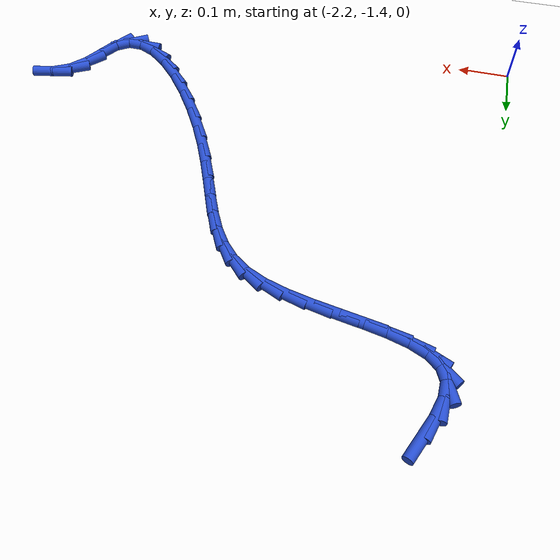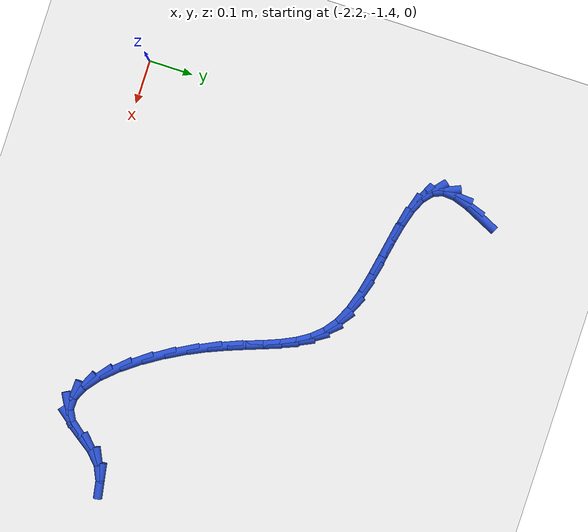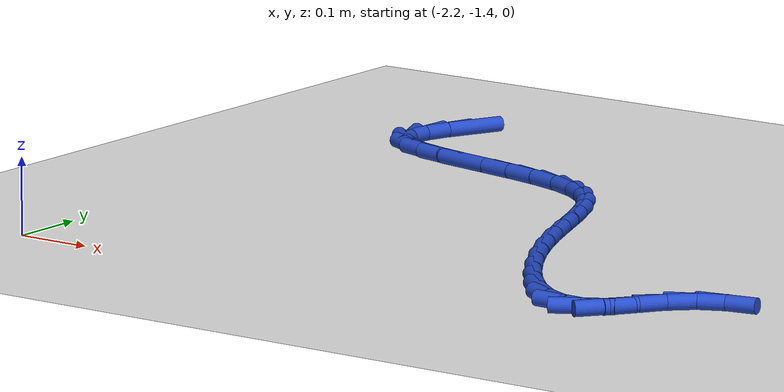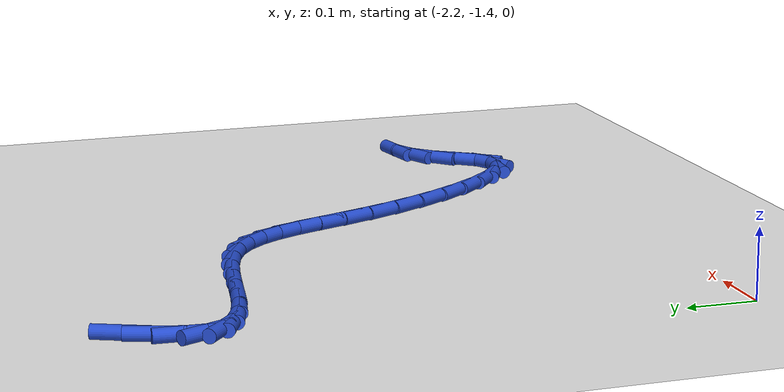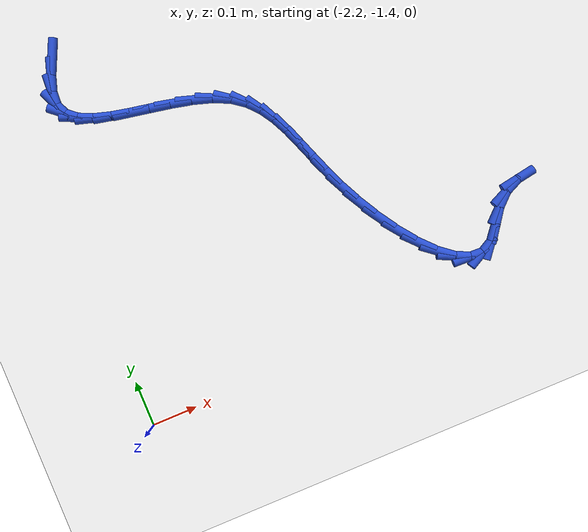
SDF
<sdf version="1.6">
 <world name="default">
  <model name="ground_plane">
   <static>1</static>
   <link name="link">
    <collision name="collision">
     <geometry><plane><normal>0 0 1</normal><size>100 100</size></plane></geometry>
     <surface><friction><ode><mu>100</mu><mu2>50</mu2></ode></friction></surface>
    </collision>
    <visual name="visual">
     <cast_shadows>0</cast_shadows>
     <geometry><plane><normal>0 0 1</normal><size>100 100</size></plane></geometry>
     <material>
      <script><uri>file://media/materials/scripts/gazebo.material</uri><name>Gazebo/WhiteGlow</name></script>
     </material>
    </visual>
   </link>
  </model>
  <model name="line">
   <link name="link_123">
    <pose>-2.0936362761853835 -0.5857237511106551 0.01 0 1.57 1.1304827464915892</pose>
    <collision name="collision">
     <geometry><cylinder><radius>0.01</radius><length>0.08</length></cylinder></geometry>
    </collision>
    <visual name="visual">
     <material>
      <script><name>Gazebo/Blue</name><uri>file://media/materials/scripts/gazebo.material</uri></script>
     </material>
     <geometry><cylinder><radius>0.01</radius><length>0.08</length></cylinder></geometry>
    </visual>
   </link>
   <link name="link_124">
    <pose>-2.1110963962269373 -0.6227811928537758 0.01 0 1.57 1.2505907035051138</pose>
    <collision name="collision">
     <geometry><cylinder><radius>0.01</radius><length>0.08</length></cylinder></geometry>
    </collision>
    <visual name="visual">
     <material>
      <script><name>Gazebo/Blue</name><uri>file://media/materials/scripts/gazebo.material</uri></script>
     </material>
     <geometry><cylinder><radius>0.01</radius><length>0.08</length></cylinder></geometry>
    </visual>
   </link>
   <link name="link_125">
    <pose>-2.1222989616577483 -0.6565627670909907 0.01 0 1.57 1.5094765787539208</pose>
    <collision name="collision">
     <geometry><cylinder><radius>0.01</radius><length>0.08</length></cylinder></geometry>
    </collision>
    <visual name="visual">
     <material>
      <script><name>Gazebo/Blue</name><uri>file://media/materials/scripts/gazebo.material</uri></script>
     </material>
     <geometry><cylinder><radius>0.01</radius><length>0.08</length></cylinder></geometry>
    </visual>
   </link>
   <link name="link_126">
    <pose>-2.124087427035657 -0.6856924237369265 0.01 0 1.57 -1.1592667165353674</pose>
    <collision name="collision">
     <geometry><cylinder><radius>0.01</radius><length>0.08</length></cylinder></geometry>
    </collision>
    <visual name="visual">
     <material>
      <script><name>Gazebo/Blue</name><uri>file://media/materials/scripts/gazebo.material</uri></script>
     </material>
     <geometry><cylinder><radius>0.01</radius><length>0.08</length></cylinder></geometry>
    </visual>
   </link>
   <link name="link_127">
    <pose>-2.1138848703293887 -0.7090686040337999 0.01 0 1.57 -0.704567696142033</pose>
    <collision name="collision">
     <geometry><cylinder><radius>0.01</radius><length>0.08</length></cylinder></geometry>
    </collision>
    <visual name="visual">
     <material>
      <script><name>Gazebo/Blue</name><uri>file://media/materials/scripts/gazebo.material</uri></script>
     </material>
     <geometry><cylinder><radius>0.01</radius><length>0.08</length></cylinder></geometry>
    </visual>
   </link>
   <link name="link_128">
    <pose>-2.092541836993994 -0.7272128894954606 0.01 0 1.57 -0.43262352853052355</pose>
    <collision name="collision">
     <geometry><cylinder><radius>0.01</radius><length>0.08</length></cylinder></geometry>
    </collision>
    <visual name="visual">
     <material>
      <script><name>Gazebo/Blue</name><uri>file://media/materials/scripts/gazebo.material</uri></script>
     </material>
     <geometry><cylinder><radius>0.01</radius><length>0.08</length></cylinder></geometry>
    </visual>
   </link>
   <link name="link_129">
    <pose>-2.0621641393365433 -0.7412413163424173 0.01 0 1.57 -0.2874704241994234</pose>
    <collision name="collision">
     <geometry><cylinder><radius>0.01</radius><length>0.08</length></cylinder></geometry>
    </collision>
    <visual name="visual">
     <material>
      <script><name>Gazebo/Blue</name><uri>file://media/materials/scripts/gazebo.material</uri></script>
     </material>
     <geometry><cylinder><radius>0.01</radius><length>0.08</length></cylinder></geometry>
    </visual>
   </link>
   <link name="link_130">
    <pose>-2.0248594758464606 -0.7522708140315253 0.01 0 1.57 -0.2138367498502336</pose>
    <collision name="collision">
     <geometry><cylinder><radius>0.01</radius><length>0.08</length></cylinder></geometry>
    </collision>
    <visual name="visual">
     <material>
      <script><name>Gazebo/Blue</name><uri>file://media/materials/scripts/gazebo.material</uri></script>
     </material>
     <geometry><cylinder><radius>0.01</radius><length>0.08</length></cylinder></geometry>
    </visual>
   </link>
   <link name="link_131">
    <pose>-1.982735545013172 -0.7614183120196399 0.01 0 1.57 -0.18482586629759887</pose>
    <collision name="collision">
     <geometry><cylinder><radius>0.01</radius><length>0.08</length></cylinder></geometry>
    </collision>
    <visual name="visual">
     <material>
      <script><name>Gazebo/Blue</name><uri>file://media/materials/scripts/gazebo.material</uri></script>
     </material>
     <geometry><cylinder><radius>0.01</radius><length>0.08</length></cylinder></geometry>
    </visual>
   </link>
   <link name="link_132">
    <pose>-1.9379000453261024 -0.7698007397636174 0.01 0 1.57 -0.18990226244479624</pose>
    <collision name="collision">
     <geometry><cylinder><radius>0.01</radius><length>0.08</length></cylinder></geometry>
    </collision>
    <visual name="visual">
     <material>
      <script><name>Gazebo/Blue</name><uri>file://media/materials/scripts/gazebo.material</uri></script>
     </material>
     <geometry><cylinder><radius>0.01</radius><length>0.08</length></cylinder></geometry>
    </visual>
   </link>
   <link name="link_133">
    <pose>-1.8924606752746767 -0.7785350267203124 0.01 0 1.57 -0.2281836878901748</pose>
    <collision name="collision">
     <geometry><cylinder><radius>0.01</radius><length>0.08</length></cylinder></geometry>
    </collision>
    <visual name="visual">
     <material>
      <script><name>Gazebo/Blue</name><uri>file://media/materials/scripts/gazebo.material</uri></script>
     </material>
     <geometry><cylinder><radius>0.01</radius><length>0.08</length></cylinder></geometry>
    </visual>
   </link>
   <link name="link_134">
    <pose>-1.8485251333483208 -0.7887381023465809 0.01 0 1.57 -0.3071162690119088</pose>
    <collision name="collision">
     <geometry><cylinder><radius>0.01</radius><length>0.08</length></cylinder></geometry>
    </collision>
    <visual name="visual">
     <material>
      <script><name>Gazebo/Blue</name><uri>file://media/materials/scripts/gazebo.material</uri></script>
     </material>
     <geometry><cylinder><radius>0.01</radius><length>0.08</length></cylinder></geometry>
    </visual>
   </link>
   <link name="link_135">
    <pose>-1.8082011180364579 -0.8015268960992781 0.01 0 1.57 -0.4444829838751946</pose>
    <collision name="collision">
     <geometry><cylinder><radius>0.01</radius><length>0.08</length></cylinder></geometry>
    </collision>
    <visual name="visual">
     <material>
      <script><name>Gazebo/Blue</name><uri>file://media/materials/scripts/gazebo.material</uri></script>
     </material>
     <geometry><cylinder><radius>0.01</radius><length>0.08</length></cylinder></geometry>
    </visual>
   </link>
   <link name="link_136">
    <pose>-1.7735847078606075 -0.8180136092486932 0.01 0 1.57 -0.640308229063073</pose>
    <collision name="collision">
     <geometry><cylinder><radius>0.01</radius><length>0.08</length></cylinder></geometry>
    </collision>
    <visual name="visual">
     <material>
      <script><name>Gazebo/Blue</name><uri>file://media/materials/scripts/gazebo.material</uri></script>
     </material>
     <geometry><cylinder><radius>0.01</radius><length>0.08</length></cylinder></geometry>
    </visual>
   </link>
   <link name="link_137">
    <pose>-1.745625435098971 -0.8388439112649739 0.01 0 1.57 -0.8383559571589433</pose>
    <collision name="collision">
     <geometry><cylinder><radius>0.01</radius><length>0.08</length></cylinder></geometry>
    </collision>
    <visual name="visual">
     <material>
      <script><name>Gazebo/Blue</name><uri>file://media/materials/scripts/gazebo.material</uri></script>
     </material>
     <geometry><cylinder><radius>0.01</radius><length>0.08</length></cylinder></geometry>
    </visual>
   </link>
   <link name="link_138">
    <pose>-1.7231735425288197 -0.863809266813536 0.01 0 1.57 -1.0042915070324387</pose>
    <collision name="collision">
     <geometry><cylinder><radius>0.01</radius><length>0.08</length></cylinder></geometry>
    </collision>
    <visual name="visual">
     <material>
      <script><name>Gazebo/Blue</name><uri>file://media/materials/scripts/gazebo.material</uri></script>
     </material>
     <geometry><cylinder><radius>0.01</radius><length>0.08</length></cylinder></geometry>
    </visual>
   </link>
   <link name="link_139">
    <pose>-1.7048549650735703 -0.8926098692766204 0.01 0 1.57 -1.1223210108696275</pose>
    <collision name="collision">
     <geometry><cylinder><radius>0.01</radius><length>0.08</length></cylinder></geometry>
    </collision>
    <visual name="visual">
     <material>
      <script><name>Gazebo/Blue</name><uri>file://media/materials/scripts/gazebo.material</uri></script>
     </material>
     <geometry><cylinder><radius>0.01</radius><length>0.08</length></cylinder></geometry>
    </visual>
   </link>
   <link name="link_140">
    <pose>-1.6892956376566397 -0.9249459120364697 0.01 0 1.57 -1.1916121205254795</pose>
    <collision name="collision">
     <geometry><cylinder><radius>0.01</radius><length>0.08</length></cylinder></geometry>
    </collision>
    <visual name="visual">
     <material>
      <script><name>Gazebo/Blue</name><uri>file://media/materials/scripts/gazebo.material</uri></script>
     </material>
     <geometry><cylinder><radius>0.01</radius><length>0.08</length></cylinder></geometry>
    </visual>
   </link>
   <link name="link_141">
    <pose>-1.6751214952014448 -0.960517588475326 0.01 0 1.57 -1.2183537296997786</pose>
    <collision name="collision">
     <geometry><cylinder><radius>0.01</radius><length>0.08</length></cylinder></geometry>
    </collision>
    <visual name="visual">
     <material>
      <script><name>Gazebo/Blue</name><uri>file://media/materials/scripts/gazebo.material</uri></script>
     </material>
     <geometry><cylinder><radius>0.01</radius><length>0.08</length></cylinder></geometry>
    </visual>
   </link>
   <link name="link_142">
    <pose>-1.6609584726314017 -0.9990250919754318 0.01 0 1.57 -1.2099572104852179</pose>
    <collision name="collision">
     <geometry><cylinder><radius>0.01</radius><length>0.08</length></cylinder></geometry>
    </collision>
    <visual name="visual">
     <material>
      <script><name>Gazebo/Blue</name><uri>file://media/materials/scripts/gazebo.material</uri></script>
     </material>
     <geometry><cylinder><radius>0.01</radius><length>0.08</length></cylinder></geometry>
    </visual>
   </link>
   <link name="link_143">
    <pose>-1.6454325048699263 -1.0401686159190284 0.01 0 1.57 -1.1731392412183237</pose>
    <collision name="collision">
     <geometry><cylinder><radius>0.01</radius><length>0.08</length></cylinder></geometry>
    </collision>
    <visual name="visual">
     <material>
      <script><name>Gazebo/Blue</name><uri>file://media/materials/scripts/gazebo.material</uri></script>
     </material>
     <geometry><cylinder><radius>0.01</radius><length>0.08</length></cylinder></geometry>
    </visual>
   </link>
   <link name="link_144">
    <pose>-1.627169526840437 -1.0836483536883588 0.01 0 1.57 -1.1169858065670613</pose>
    <collision name="collision">
     <geometry><cylinder><radius>0.01</radius><length>0.08</length></cylinder></geometry>
    </collision>
    <visual name="visual">
     <material>
      <script><name>Gazebo/Blue</name><uri>file://media/materials/scripts/gazebo.material</uri></script>
     </material>
     <geometry><cylinder><radius>0.01</radius><length>0.08</length></cylinder></geometry>
    </visual>
   </link>
   <link name="link_145">
    <pose>-1.6050818490480836 -1.1289319408005227 0.01 0 1.57 -1.058288861675683</pose>
    <collision name="collision">
     <geometry><cylinder><radius>0.01</radius><length>0.08</length></cylinder></geometry>
    </collision>
    <visual name="visual">
     <material>
      <script><name>Gazebo/Blue</name><uri>file://media/materials/scripts/gazebo.material</uri></script>
     </material>
     <geometry><cylinder><radius>0.01</radius><length>0.08</length></cylinder></geometry>
    </visual>
   </link>
   <link name="link_146">
    <pose>-1.5795651775469721 -1.1742823873644874 0.01 0 1.57 -0.9955316100606924</pose>
    <collision name="collision">
     <geometry><cylinder><radius>0.01</radius><length>0.08</length></cylinder></geometry>
    </collision>
    <visual name="visual">
     <material>
      <script><name>Gazebo/Blue</name><uri>file://media/materials/scripts/gazebo.material</uri></script>
     </material>
     <geometry><cylinder><radius>0.01</radius><length>0.08</length></cylinder></geometry>
    </visual>
   </link>
   <link name="link_147">
    <pose>-1.5514940710653689 -1.2175738401826957 0.01 0 1.57 -0.9204418673350014</pose>
    <collision name="collision">
     <geometry><cylinder><radius>0.01</radius><length>0.08</length></cylinder></geometry>
    </collision>
    <visual name="visual">
     <material>
      <script><name>Gazebo/Blue</name><uri>file://media/materials/scripts/gazebo.material</uri></script>
     </material>
     <geometry><cylinder><radius>0.01</radius><length>0.08</length></cylinder></geometry>
    </visual>
   </link>
   <link name="link_148">
    <pose>-1.5217433250662005 -1.2566802538117772 0.01 0 1.57 -0.8207379263596253</pose>
    <collision name="collision">
     <geometry><cylinder><radius>0.01</radius><length>0.08</length></cylinder></geometry>
    </collision>
    <visual name="visual">
     <material>
      <script><name>Gazebo/Blue</name><uri>file://media/materials/scripts/gazebo.material</uri></script>
     </material>
     <geometry><cylinder><radius>0.01</radius><length>0.08</length></cylinder></geometry>
    </visual>
   </link>
   <link name="link_149">
    <pose>-1.4911877350123937 -1.2894755828083624 0.01 0 1.57 -0.6741343651001658</pose>
    <collision name="collision">
     <geometry><cylinder><radius>0.01</radius><length>0.08</length></cylinder></geometry>
    </collision>
    <visual name="visual">
     <material>
      <script><name>Gazebo/Blue</name><uri>file://media/materials/scripts/gazebo.material</uri></script>
     </material>
     <geometry><cylinder><radius>0.01</radius><length>0.08</length></cylinder></geometry>
    </visual>
   </link>
   <link name="link_150">
    <pose>-1.4607020963668744 -1.3138337817290802 0.01 0 1.57 -0.43688492177471167</pose>
    <collision name="collision">
     <geometry><cylinder><radius>0.01</radius><length>0.08</length></cylinder></geometry>
    </collision>
    <visual name="visual">
     <material>
      <script><name>Gazebo/Blue</name><uri>file://media/materials/scripts/gazebo.material</uri></script>
     </material>
     <geometry><cylinder><radius>0.01</radius><length>0.08</length></cylinder></geometry>
    </visual>
   </link>
   <link name="link_151">
    <pose>-1.431161204592568 -1.3276288051305607 0.01 0 1.57 -0.039868783474468455</pose>
    <collision name="collision">
     <geometry><cylinder><radius>0.01</radius><length>0.08</length></cylinder></geometry>
    </collision>
    <visual name="visual">
     <material>
      <script><name>Gazebo/Blue</name><uri>file://media/materials/scripts/gazebo.material</uri></script>
     </material>
     <geometry><cylinder><radius>0.01</radius><length>0.08</length></cylinder></geometry>
    </visual>
   </link>
   <link name="link_152">
    <pose>-1.4034398551524019 -1.3287346075694324 0.01 0 1.57 0.501138418513553</pose>
    <collision name="collision">
     <geometry><cylinder><radius>0.01</radius><length>0.08</length></cylinder></geometry>
    </collision>
    <visual name="visual">
     <material>
      <script><name>Gazebo/Blue</name><uri>file://media/materials/scripts/gazebo.material</uri></script>
     </material>
     <geometry><cylinder><radius>0.01</radius><length>0.08</length></cylinder></geometry>
    </visual>
   </link>
   <link name="link_153">
    <pose>-1.3784128065091494 -1.3150252511758413 0.01 0 1.57 0.8976233271731233</pose>
    <collision name="collision">
     <geometry><cylinder><radius>0.01</radius><length>0.08</length></cylinder></geometry>
    </collision>
    <visual name="visual">
     <material>
      <script><name>Gazebo/Blue</name><uri>file://media/materials/scripts/gazebo.material</uri></script>
     </material>
     <geometry><cylinder><radius>0.01</radius><length>0.08</length></cylinder></geometry>
    </visual>
   </link>
   <link name="link_154">
    <pose>-1.356055702304503 -1.2869888668884868 0.01 0 1.57 0.9558301600531977</pose>
    <collision name="collision">
     <geometry><cylinder><radius>0.01</radius><length>0.08</length></cylinder></geometry>
    </collision>
    <visual name="visual">
     <material>
      <script><name>Gazebo/Blue</name><uri>file://media/materials/scripts/gazebo.material</uri></script>
     </material>
     <geometry><cylinder><radius>0.01</radius><length>0.08</length></cylinder></geometry>
    </visual>
   </link>
   <link name="link_155">
    <pose>-1.3331130598397467 -1.2545076990394681 0.01 0 1.57 0.7530979663377415</pose>
    <collision name="collision">
     <geometry><cylinder><radius>0.01</radius><length>0.08</length></cylinder></geometry>
    </collision>
    <visual name="visual">
     <material>
      <script><name>Gazebo/Blue</name><uri>file://media/materials/scripts/gazebo.material</uri></script>
     </material>
     <geometry><cylinder><radius>0.01</radius><length>0.08</length></cylinder></geometry>
    </visual>
   </link>
   <link name="link_156">
    <pose>-1.3058347536462003 -1.2289370194011544 0.01 0 1.57 0.4349689468986836</pose>
    <collision name="collision">
     <geometry><cylinder><radius>0.01</radius><length>0.08</length></cylinder></geometry>
    </collision>
    <visual name="visual">
     <material>
      <script><name>Gazebo/Blue</name><uri>file://media/materials/scripts/gazebo.material</uri></script>
     </material>
     <geometry><cylinder><radius>0.01</radius><length>0.08</length></cylinder></geometry>
    </visual>
   </link>
   <link name="link_157">
    <pose>-1.273304384514213 -1.21382181944717 0.01 0 1.57 0.17104882686562414</pose>
    <collision name="collision">
     <geometry><cylinder><radius>0.01</radius><length>0.08</length></cylinder></geometry>
    </collision>
    <visual name="visual">
     <material>
      <script><name>Gazebo/Blue</name><uri>file://media/materials/scripts/gazebo.material</uri></script>
     </material>
     <geometry><cylinder><radius>0.01</radius><length>0.08</length></cylinder></geometry>
    </visual>
   </link>
  </model>
 </world>
</sdf>
